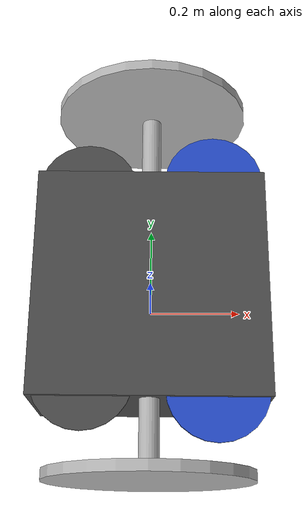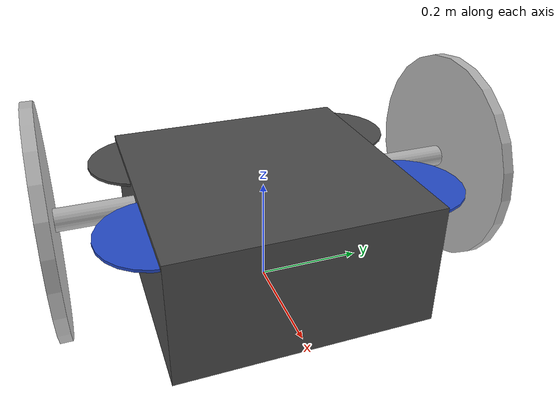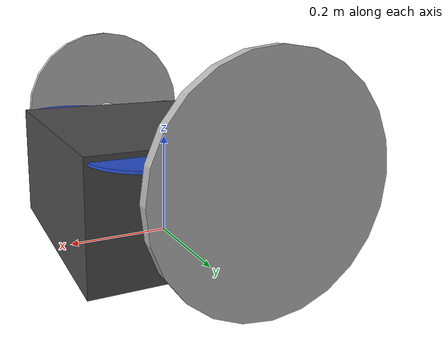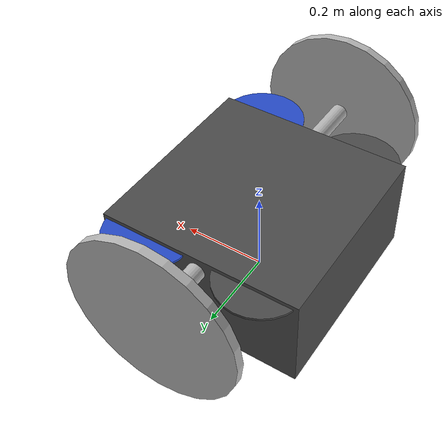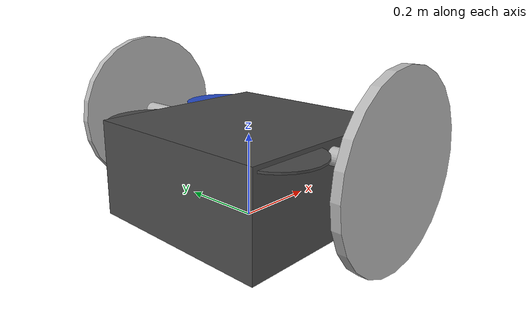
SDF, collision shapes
<?xml version="1.0" ?>
<sdf version="1.5">
  <model name='iris_wheel'>
    <include>
      <uri>model://iris_without_standoffs</uri>
      <pose>0 0 0.2 0 0 0</pose>
    </include>

    <include>
      <uri>model://wheel</uri>
    </include>

    <include>
      <uri>model://livox_laser</uri>
      <pose>0 0 0.22 0 0 0</pose>
    </include>

    <joint name="livox_laser_joint" type="fixed">
      <child>livox_laser::link</child>
      <parent>iris::base_link</parent>
      <axis>
        <xyz>0 0 1</xyz>
        <limit>
          <upper>0</upper>
          <lower>0</lower>
        </limit>
      </axis>
    </joint>

   <plugin name="arducopter_plugin" filename="libArduPilotPlugin.so">
      <fdm_addr>127.0.0.1</fdm_addr>
      <fdm_port_in>9002</fdm_port_in>
      <fdm_port_out>9003</fdm_port_out>
      <!--
          Require by APM :
          Only change model and gazebo from XYZ to XY-Z coordinates
      -->
      <modelXYZToAirplaneXForwardZDown>0 0 0 3.141593 0 0</modelXYZToAirplaneXForwardZDown>
      <gazeboXYZToNED>0 0 0 3.141593 0 0</gazeboXYZToNED>
      <imuName>iris_wheel::iris::iris/imu_link::imu_sensor</imuName>
      <connectionTimeoutMaxCount>5</connectionTimeoutMaxCount>
      <control channel="0">
      <!--
          incoming control command [0, 1]
          so offset it by 0 to get [0, 1]
          and divide max target by 1.
          offset = 0
          multiplier = 838 max rpm / 1 = 838
        -->
        <type>VELOCITY</type>
        <offset>0</offset>
        <p_gain>0.20</p_gain>
        <i_gain>0</i_gain>
        <d_gain>0</d_gain>
        <i_max>0</i_max>
        <i_min>0</i_min>
        <cmd_max>2.5</cmd_max>
        <cmd_min>-2.5</cmd_min>
        <jointName>iris::rotor_0_joint</jointName>
        <multiplier>1100</multiplier>
        <controlVelocitySlowdownSim>1</controlVelocitySlowdownSim>
      </control>
      <control channel="1">
        <type>VELOCITY</type>
        <offset>0</offset>
        <p_gain>0.20</p_gain>
        <i_gain>0</i_gain>
        <d_gain>0</d_gain>
        <i_max>0</i_max>
        <i_min>0</i_min>
        <cmd_max>2.5</cmd_max>
        <cmd_min>-2.5</cmd_min>
        <jointName>iris::rotor_1_joint</jointName>
        <multiplier>1100</multiplier>
        <controlVelocitySlowdownSim>1</controlVelocitySlowdownSim>
      </control>
      <control channel="2">
        <type>VELOCITY</type>
        <offset>0</offset>
        <p_gain>0.20</p_gain>
        <i_gain>0</i_gain>
        <d_gain>0</d_gain>
        <i_max>0</i_max>
        <i_min>0</i_min>
        <cmd_max>2.5</cmd_max>
        <cmd_min>-2.5</cmd_min>
        <jointName>iris::rotor_2_joint</jointName>
        <multiplier>-1100</multiplier>
        <controlVelocitySlowdownSim>1</controlVelocitySlowdownSim>
      </control>
      <control channel="3">
        <type>VELOCITY</type>
        <offset>0</offset>
        <p_gain>0.20</p_gain>
        <i_gain>0</i_gain>
        <d_gain>0</d_gain>
        <i_max>0</i_max>
        <i_min>0</i_min>
        <cmd_max>2.5</cmd_max>
        <cmd_min>-2.5</cmd_min>
        <jointName>iris::rotor_3_joint</jointName>
        <multiplier>-1100</multiplier>
        <controlVelocitySlowdownSim>1</controlVelocitySlowdownSim>
      </control>
    </plugin>
  </model>
</sdf>

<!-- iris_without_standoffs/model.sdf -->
<sdf version='1.6'>
  <model name='iris'>
    <pose>0 0 0.2 0 0 0</pose>
    <link name='base_link'>
      <velocity_decay>
        <linear>0.0</linear>
        <angular>0.0</angular>
      </velocity_decay>
      <inertial>
        <pose>0 0 0 0 0 0</pose>
        <mass>1.5</mass>
        <inertia>
          <ixx>0.008</ixx>
          <ixy>0</ixy>
          <ixz>0</ixz>
          <iyy>0.015</iyy>
          <iyz>0</iyz>
          <izz>0.017</izz>
        </inertia>
      </inertial>
      <collision name='base_link_collision'>
        <pose>0 0 -0.08 0 0 0</pose>
        <geometry>
          <box>
            <size>0.47 0.47 0.23</size>
          </box>
        </geometry>
        <surface>
          <contact>
            <ode>
              <max_vel>100.0</max_vel>
              <min_depth>0.001</min_depth>
            </ode>
          </contact>
          <friction>
            <ode>
              <mu>100000.0</mu>
              <mu2>100000.0</mu2>
            </ode>
          </friction>
        </surface>
      </collision>
      <visual name='base_link_visual'>
        <geometry>
          <mesh>
            <uri>model://iris_with_standoffs/meshes/iris.dae</uri>
          </mesh>
        </geometry>
        <material>
          <script>
            <name>Gazebo/DarkGrey</name>
          </script>
        </material>
      </visual>

      <visual name='front_left_leg_visual'>
        <pose>0.123 0.22 -0.11 0 0 0</pose>
        <geometry>
          <cylinder>
            <radius>0.005</radius>
            <length>0.17</length>
          </cylinder>
        </geometry>
        <material>
          <script>
            <name>Gazebo/FlatBlack</name>
            <uri>file://media/materials/scripts/gazebo.material</uri>
          </script>
        </material>
      </visual>
      <visual name='front_right_leg_visual'>
        <pose>0.123 -0.22 -0.11 0 0 0</pose>
        <geometry>
          <cylinder>
            <radius>0.005</radius>
            <length>0.17</length>
          </cylinder>
        </geometry>
        <material>
          <script>
            <name>Gazebo/FlatBlack</name>
            <uri>file://media/materials/scripts/gazebo.material</uri>
          </script>
        </material>
      </visual>
      <visual name='rear_left_leg_visual'>
        <pose>-0.140 0.21 -0.11 0 0 0</pose>
        <geometry>
          <cylinder>
            <radius>0.005</radius>
            <length>0.17</length>
          </cylinder>
        </geometry>
        <material>
          <script>
            <name>Gazebo/FlatBlack</name>
            <uri>file://media/materials/scripts/gazebo.material</uri>
          </script>
        </material>
      </visual>
      <visual name='rear_right_leg_visual'>
        <pose>-0.140 -0.21 -0.11 0 0 0</pose>
        <geometry>
          <cylinder>
            <radius>0.005</radius>
            <length>0.17</length>
          </cylinder>
        </geometry>
        <material>
          <script>
            <name>Gazebo/FlatBlack</name>
            <uri>file://media/materials/scripts/gazebo.material</uri>
          </script>
        </material>
      </visual>
    </link>
    <link name='iris/ground_truth/odometry_sensorgt_link'>
      <pose>0 0 0 0 -0 0</pose>
      <inertial>
        <pose>0 0 0 0 -0 0</pose>
        <mass>0.15</mass>
        <inertia>
          <ixx>0.0001</ixx>
          <ixy>0</ixy>
          <ixz>0</ixz>
          <iyy>0.0002</iyy>
          <iyz>0</iyz>
          <izz>0.0002</izz>
        </inertia>
      </inertial>
    </link>
    <joint name='iris/ground_truth/odometry_sensorgt_joint' type='revolute'>
      <child>iris/ground_truth/odometry_sensorgt_link</child>
      <parent>base_link</parent>
      <axis>
        <xyz>0 0 1</xyz>
        <limit>
          <lower>0</lower>
          <upper>0</upper>
          <effort>0</effort>
          <velocity>0</velocity>
        </limit>
        <dynamics>
          <damping>1.0</damping>
        </dynamics>
        <use_parent_model_frame>1</use_parent_model_frame>
      </axis>
      <physics>
        <ode>
          <implicit_spring_damper>1</implicit_spring_damper>
        </ode>
      </physics>
    </joint>
    <link name='iris/imu_link'>
      <inertial>
        <pose>0 0 0 0 0 0</pose>
        <mass>0.15</mass>
        <inertia>
          <ixx>0.00001</ixx>
          <ixy>0</ixy>
          <ixz>0</ixz>
          <iyy>0.00002</iyy>
          <iyz>0</iyz>
          <izz>0.00002</izz>
        </inertia>
      </inertial>
      <sensor name="imu_sensor" type="imu">
        <pose>0 0 0 3.141593 0 0</pose>
        <always_on>1</always_on>
        <update_rate>1000.0</update_rate>
      </sensor>
    </link>
    <joint name='iris/imu_joint' type='revolute'>
      <child>iris/imu_link</child>
      <parent>base_link</parent>
      <axis>
        <xyz>0 0 1</xyz>
        <limit>
          <lower>0</lower>
          <upper>0</upper>
          <effort>0</effort>
          <velocity>0</velocity>
        </limit>
        <dynamics>
          <damping>1.0</damping>
        </dynamics>
        <use_parent_model_frame>1</use_parent_model_frame>
      </axis>
      <physics>
        <ode>
          <implicit_spring_damper>1</implicit_spring_damper>
        </ode>
      </physics>
    </joint>
    <link name='rotor_0'>
      <pose>0.13 -0.22 0.023 0 -0 0</pose>
      <inertial>
        <pose>0 0 0 0 -0 0</pose>
        <mass>0.025</mass>
        <inertia>
          <ixx>9.75e-06</ixx>
          <ixy>0</ixy>
          <ixz>0</ixz>
          <iyy>0.000166704</iyy>
          <iyz>0</iyz>
          <izz>0.000167604</izz>
        </inertia>
      </inertial>
      <collision name='rotor_0_collision'>
        <pose>0 0 0 0 -0 0</pose>
        <geometry>
          <cylinder>
            <length>0.005</length>
            <radius>0.1</radius>
          </cylinder>
        </geometry>
        <surface>
          <contact>
            <ode/>
          </contact>
          <friction>
            <ode/>
          </friction>
        </surface>
      </collision>
      <visual name='rotor_0_visual'>
        <pose>0 0 0 0 -0 0</pose>
        <geometry>
          <mesh>
            <scale>1 1 1</scale>
            <uri>model://iris_with_standoffs/meshes/iris_prop_ccw.dae</uri>
          </mesh>
        </geometry>
        <material>
          <script>
            <name>Gazebo/Blue</name>
            <uri>__default__</uri>
          </script>
        </material>
      </visual>
      <gravity>1</gravity>
      <velocity_decay/>
      <self_collide>0</self_collide>
    </link>
    <joint name='rotor_0_joint' type='revolute'>
      <child>rotor_0</child>
      <parent>base_link</parent>
      <axis>
        <xyz>0 0 1</xyz>
        <limit>
          <lower>-1e+16</lower>
          <upper>1e+16</upper>
        </limit>
        <dynamics>
          <damping>0.004</damping>
        </dynamics>
        <use_parent_model_frame>1</use_parent_model_frame>
      </axis>
      <physics>
        <ode>
          <implicit_spring_damper>1</implicit_spring_damper>
        </ode>
      </physics>
    </joint>
    <link name='rotor_1'>
      <pose>-0.13 0.2 0.023 0 -0 0</pose>
      <inertial>
        <pose>0 0 0 0 -0 0</pose>
        <mass>0.025</mass>
        <inertia>
          <ixx>9.75e-06</ixx>
          <ixy>0</ixy>
          <ixz>0</ixz>
          <iyy>0.000166704</iyy>
          <iyz>0</iyz>
          <izz>0.000167604</izz>
        </inertia>
      </inertial>
      <collision name='rotor_1_collision'>
        <pose>0 0 0 0 -0 0</pose>
        <geometry>
          <cylinder>
            <length>0.005</length>
            <radius>0.1</radius>
          </cylinder>
        </geometry>
        <surface>
          <contact>
            <ode/>
          </contact>
          <friction>
            <ode/>
          </friction>
        </surface>
      </collision>
      <visual name='rotor_1_visual'>
        <pose>0 0 0 0 -0 0</pose>
        <geometry>
          <mesh>
            <scale>1 1 1</scale>
            <uri>model://iris_with_standoffs/meshes/iris_prop_ccw.dae</uri>
          </mesh>
        </geometry>
        <material>
          <script>
            <name>Gazebo/DarkGrey</name>
            <uri>__default__</uri>
          </script>
        </material>
      </visual>
      <gravity>1</gravity>
      <velocity_decay/>
      <self_collide>0</self_collide>
    </link>
    <joint name='rotor_1_joint' type='revolute'>
      <child>rotor_1</child>
      <parent>base_link</parent>
      <axis>
        <xyz>0 0 1</xyz>
        <limit>
          <lower>-1e+16</lower>
          <upper>1e+16</upper>
        </limit>
        <dynamics>
          <damping>0.004</damping>
        </dynamics>
        <use_parent_model_frame>1</use_parent_model_frame>
      </axis>
      <physics>
        <ode>
          <implicit_spring_damper>1</implicit_spring_damper>
        </ode>
      </physics>
    </joint>
    <link name='rotor_2'>
      <pose>0.13 0.22 0.023 0 -0 0</pose>
      <inertial>
        <pose>0 0 0 0 -0 0</pose>
        <mass>0.025</mass>
        <inertia>
          <ixx>9.75e-06</ixx>
          <ixy>0</ixy>
          <ixz>0</ixz>
          <iyy>0.000166704</iyy>
          <iyz>0</iyz>
          <izz>0.000167604</izz>
        </inertia>
      </inertial>
      <collision name='rotor_2_collision'>
        <pose>0 0 0 0 -0 0</pose>
        <geometry>
          <cylinder>
            <length>0.005</length>
            <radius>0.1</radius>
          </cylinder>
        </geometry>
        <surface>
          <contact>
            <ode/>
          </contact>
          <friction>
            <ode/>
          </friction>
        </surface>
      </collision>
      <visual name='rotor_2_visual'>
        <pose>0 0 0 0 -0 0</pose>
        <geometry>
          <mesh>
            <scale>1 1 1</scale>
            <uri>model://iris_with_standoffs/meshes/iris_prop_cw.dae</uri>
          </mesh>
        </geometry>
        <material>
          <script>
            <name>Gazebo/Blue</name>
            <uri>__default__</uri>
          </script>
        </material>
      </visual>
      <gravity>1</gravity>
      <velocity_decay/>
      <self_collide>0</self_collide>
    </link>
    <joint name='rotor_2_joint' type='revolute'>
      <child>rotor_2</child>
      <parent>base_link</parent>
      <axis>
        <xyz>0 0 1</xyz>
        <limit>
          <lower>-1e+16</lower>
          <upper>1e+16</upper>
        </limit>
        <dynamics>
          <damping>0.004</damping>
        </dynamics>
        <use_parent_model_frame>1</use_parent_model_frame>
      </axis>
      <physics>
        <ode>
          <implicit_spring_damper>1</implicit_spring_damper>
        </ode>
      </physics>
    </joint>
    <link name='rotor_3'>
      <pose>-0.13 -0.2 0.023 0 -0 0</pose>
      <inertial>
        <pose>0 0 0 0 -0 0</pose>
        <mass>0.025</mass>
        <inertia>
          <ixx>9.75e-06</ixx>
          <ixy>0</ixy>
          <ixz>0</ixz>
          <iyy>0.000166704</iyy>
          <iyz>0</iyz>
          <izz>0.000167604</izz>
        </inertia>
      </inertial>
      <collision name='rotor_3_collision'>
        <pose>0 0 0 0 -0 0</pose>
        <geometry>
          <cylinder>
            <length>0.005</length>
            <radius>0.1</radius>
          </cylinder>
        </geometry>
        <surface>
          <contact>
            <ode/>
          </contact>
          <friction>
            <ode/>
          </friction>
        </surface>
      </collision>
      <visual name='rotor_3_visual'>
        <pose>0 0 0 0 -0 0</pose>
        <geometry>
          <mesh>
            <scale>1 1 1</scale>
            <uri>model://iris_with_standoffs/meshes/iris_prop_cw.dae</uri>
          </mesh>
        </geometry>
        <material>
          <script>
            <name>Gazebo/DarkGrey</name>
            <uri>__default__</uri>
          </script>
        </material>
      </visual>
      <gravity>1</gravity>
      <velocity_decay/>
      <self_collide>0</self_collide>
    </link>
    <joint name='rotor_3_joint' type='revolute'>
      <child>rotor_3</child>
      <parent>base_link</parent>
      <axis>
        <xyz>0 0 1</xyz>
        <limit>
          <lower>-1e+16</lower>
          <upper>1e+16</upper>
        </limit>
        <dynamics>
          <damping>0.004</damping>
        </dynamics>
        <use_parent_model_frame>1</use_parent_model_frame>
      </axis>
      <physics>
        <ode>
          <implicit_spring_damper>1</implicit_spring_damper>
        </ode>
      </physics>
    </joint>
    <static>0</static>

   <!-- plugins -->
    <plugin name="rotor_0_blade_1" filename="libLiftDragPlugin.so">
      <a0>0.3</a0>
      <alpha_stall>1.4</alpha_stall>
      <cla>4.2500</cla>
      <cda>0.10</cda>
      <cma>0.00</cma>
      <cla_stall>-0.025</cla_stall>
      <cda_stall>0.0</cda_stall>
      <cma_stall>0.0</cma_stall>
      <area>0.002</area>
      <air_density>1.2041</air_density>
      <cp>0.084 0 0</cp>
      <forward>0 1 0</forward>
      <upward>0 0 1</upward>
      <link_name>iris::rotor_0</link_name>
    </plugin>
    <plugin name="rotor_0_blade_2" filename="libLiftDragPlugin.so">
      <a0>0.3</a0>
      <alpha_stall>1.4</alpha_stall>
      <cla>4.2500</cla>
      <cda>0.10</cda>
      <cma>0.00</cma>
      <cla_stall>-0.025</cla_stall>
      <cda_stall>0.0</cda_stall>
      <cma_stall>0.0</cma_stall>
      <area>0.002</area>
      <air_density>1.2041</air_density>
      <cp>-0.084 0 0</cp>
      <forward>0 -1 0</forward>
      <upward>0 0 1</upward>
      <link_name>iris::rotor_0</link_name>
    </plugin>

    <plugin name="rotor_1_blade_1" filename="libLiftDragPlugin.so">
      <a0>0.3</a0>
      <alpha_stall>1.4</alpha_stall>
      <cla>4.2500</cla>
      <cda>0.10</cda>
      <cma>0.00</cma>
      <cla_stall>-0.025</cla_stall>
      <cda_stall>0.0</cda_stall>
      <cma_stall>0.0</cma_stall>
      <area>0.002</area>
      <air_density>1.2041</air_density>
      <cp>0.084 0 0</cp>
      <forward>0 1 0</forward>
      <upward>0 0 1</upward>
      <link_name>iris::rotor_1</link_name>
    </plugin>
    <plugin name="rotor_1_blade_2" filename="libLiftDragPlugin.so">
      <a0>0.3</a0>
      <alpha_stall>1.4</alpha_stall>
      <cla>4.2500</cla>
      <cda>0.10</cda>
      <cma>0.00</cma>
      <cla_stall>-0.025</cla_stall>
      <cda_stall>0.0</cda_stall>
      <cma_stall>0.0</cma_stall>
      <area>0.002</area>
      <air_density>1.2041</air_density>
      <cp>-0.084 0 0</cp>
      <forward>0 -1 0</forward>
      <upward>0 0 1</upward>
      <link_name>iris::rotor_1</link_name>
    </plugin>

    <plugin name="rotor_2_blade_1" filename="libLiftDragPlugin.so">
      <a0>0.3</a0>
      <alpha_stall>1.4</alpha_stall>
      <cla>4.2500</cla>
      <cda>0.10</cda>
      <cma>0.00</cma>
      <cla_stall>-0.025</cla_stall>
      <cda_stall>0.0</cda_stall>
      <cma_stall>0.0</cma_stall>
      <area>0.002</area>
      <air_density>1.2041</air_density>
      <cp>0.084 0 0</cp>
      <forward>0 -1 0</forward>
      <upward>0 0 1</upward>
      <link_name>iris::rotor_2</link_name>
    </plugin>
    <plugin name="rotor_2_blade_2" filename="libLiftDragPlugin.so">
      <a0>0.3</a0>
      <alpha_stall>1.4</alpha_stall>
      <cla>4.2500</cla>
      <cda>0.10</cda>
      <cma>0.00</cma>
      <cla_stall>-0.025</cla_stall>
      <cda_stall>0.0</cda_stall>
      <cma_stall>0.0</cma_stall>
      <area>0.002</area>
      <air_density>1.2041</air_density>
      <cp>-0.084 0 0</cp>
      <forward>0 1 0</forward>
      <upward>0 0 1</upward>
      <link_name>iris::rotor_2</link_name>
    </plugin>

    <plugin name="rotor_3_blade_1" filename="libLiftDragPlugin.so">
      <a0>0.3</a0>
      <alpha_stall>1.4</alpha_stall>
      <cla>4.2500</cla>
      <cda>0.10</cda>
      <cma>0.00</cma>
      <cla_stall>-0.025</cla_stall>
      <cda_stall>0.0</cda_stall>
      <cma_stall>0.0</cma_stall>
      <area>0.002</area>
      <air_density>1.2041</air_density>
      <cp>0.084 0 0</cp>
      <forward>0 -1 0</forward>
      <upward>0 0 1</upward>
      <link_name>iris::rotor_3</link_name>
    </plugin>
    <plugin name="rotor_3_blade_2" filename="libLiftDragPlugin.so">
      <a0>0.3</a0>
      <alpha_stall>1.4</alpha_stall>
      <cla>4.2500</cla>
      <cda>0.10</cda>
      <cma>0.00</cma>
      <cla_stall>-0.025</cla_stall>
      <cda_stall>0.0</cda_stall>
      <cma_stall>0.0</cma_stall>
      <area>0.002</area>
      <air_density>1.2041</air_density>
      <cp>-0.084 0 0</cp>
      <forward>0 1 0</forward>
      <upward>0 0 1</upward>
      <link_name>iris::rotor_3</link_name>
    </plugin>
  </model>
</sdf>

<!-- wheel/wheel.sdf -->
<sdf version="1.5">
  <model name='wheel'>
    <link name="left_link">
      <pose>0 0.38 0.2 0 1.5707 1.5707</pose>
      <inertial>
        <pose>0 0 0 0 0 0</pose>
        <mass>0.05</mass>
        <inertia>
          <ixx>5.0167e-4</ixx>
          <ixy>0</ixy>
          <ixz>0</ixz>
          <iyy>1e-3</iyy>
          <iyz>0</iyz>
          <izz>5.0167e-4</izz>
        </inertia>
      </inertial>
      <collision name="collision">
        <geometry>
          <cylinder>
            <radius>.2</radius>
            <length>.02</length>
          </cylinder>
        </geometry>
        <surface>
          <friction>
            <ode>
              <mu>1.0</mu>
              <mu2>50.0</mu2>
              <fdir1>0 0 1</fdir1>
              <slip1>0.0</slip1>
              <slip2>0.0</slip2>
            </ode>
          </friction>
          <contact>
            <ode>
              <min_depth>0.005</min_depth>
              <kp>1e8</kp>
            </ode>
          </contact>
        </surface>
      </collision>

      <visual name="visual">
        <geometry>
          <cylinder>
            <radius>.2</radius>
            <length>.02</length>
          </cylinder>
        </geometry>
      </visual>
    </link>

     <link name="left_stick">
      <pose>0 0.2 0.2 0 1.5707 1.5707</pose>
      <inertial>
        <pose>0 0 0 0 0 0</pose>
        <mass>1e-6</mass>
        <inertia>
          <ixx>1.031e-8</ixx>
          <ixy>0</ixy>
          <ixz>0</ixz>
          <iyy>2e-10</iyy>
          <iyz>0</iyz>
          <izz>1.031e-8</izz>
        </inertia>
      </inertial>
      <collision name="collision">
        <geometry>
          <cylinder>
            <radius>.02</radius>
            <length>0.35</length>
          </cylinder>
        </geometry>
      </collision>

      <visual name="visual">
        <geometry>
          <cylinder>
            <radius>.02</radius>
            <length>0.35</length>
          </cylinder>
        </geometry>
      </visual>
    </link>

    <link name="right_link">
      <pose>0 -0.38 0.2 0 1.5707 1.5707</pose>
      <inertial>
        <pose>0 0 0 0 0 0</pose>
        <mass>0.05</mass>
        <inertia>
          <ixx>5.0167e-4</ixx>
          <ixy>0</ixy>
          <ixz>0</ixz>
          <iyy>1e-3</iyy>
          <iyz>0</iyz>
          <izz>5.0167e-4</izz>
        </inertia>
      </inertial>
      <collision name="collision">
        <geometry>
          <cylinder>
            <radius>.2</radius>
            <length>.02</length>
          </cylinder>
        </geometry>
        <surface>
          <friction>
            <ode>
              <mu>1.0</mu>
              <mu2>50.0</mu2>
              <fdir1>0 0 1</fdir1>
              <slip1>0.0</slip1>
              <slip2>0.0</slip2>
            </ode>
          </friction>
          <contact>
            <ode>
              <min_depth>0.005</min_depth>
              <kp>1e8</kp>
            </ode>
          </contact>
        </surface>
      </collision>

      <visual name="visual">
        <geometry>
          <cylinder>
            <radius>.2</radius>
            <length>.02</length>
          </cylinder>
        </geometry>
      </visual>
    </link>
    <link name="right_stick">
      <pose>0 -0.2 0.2 0 1.5707 1.5707</pose>
      <inertial>
        <pose>0 0 0 0 0 0</pose>
        <mass>1e-6</mass>
        <inertia>
          <ixx>1.031e-8</ixx>
          <ixy>0</ixy>
          <ixz>0</ixz>
          <iyy>2e-10</iyy>
          <iyz>0</iyz>
          <izz>1.031e-8</izz>
        </inertia>
      </inertial>
      <collision name="collision">
        <geometry>
          <cylinder>
            <radius>.02</radius>
            <length>0.35</length>
          </cylinder>
        </geometry>
      </collision>

      <visual name="visual">
        <geometry>
          <cylinder>
            <radius>.02</radius>
            <length>0.35</length>
          </cylinder>
        </geometry>
      </visual>
    </link>

    <joint name="left_stick_joint" type="fixed">
      <child>left_link</child>
      <parent>iris::base_link</parent>
      <axis>
        <xyz>0 1 0</xyz>
          <upper>0</upper>
          <lower>0</lower>
          <effort>0</effort>
          <velocity>0</velocity>
      </axis>
    </joint>

  <joint name="left_wheel_joint" type="revolute">
      <child>left_stick</child>
      <parent>left_link</parent>
      <axis>
        <xyz>0 1 0</xyz>
        <limit>
          <upper>-1e+16</upper>
          <lower>1e+16</lower>
        </limit>
        <dynamics>
          <spring_reference>0</spring_reference>
          <spring_stiffness>0</spring_stiffness>
        </dynamics>
        <use_parent_model_frame>true</use_parent_model_frame>
      </axis>
    </joint>

   <joint name="right_stick_joint" type="fixed">
      <child>right_link</child>
      <parent>iris::base_link</parent>
      <axis>
        <xyz>0 1 0</xyz>
        <limit>
          <upper>0</upper>
          <lower>0</lower>
          <effort>0</effort>
          <velocity>0</velocity>
        </limit>
      </axis>
    </joint>

    <joint name="right_wheel_joint" type="revolute">
      <child>right_stick</child>
      <parent>right_link</parent>
      <axis>
        <xyz>0 1 0</xyz>
        <limit>
          <upper>-1e+16</upper>
          <lower>1e+16</lower>
        </limit>
        <dynamics>
          <spring_reference>0</spring_reference>
          <spring_stiffness>0</spring_stiffness>
        </dynamics>
        <use_parent_model_frame>true</use_parent_model_frame>
      </axis>
    </joint>

    <joint name="left_zc_joint" type="revolute">
      <child>left_link</child>
      <parent>left_stick</parent>
      <axis>
        <xyz>0 1 0</xyz>
        <limit>
          <upper>-1</upper>
          <lower>1</lower>
        </limit>
        <dynamics>
          <spring_reference>0</spring_reference>
          <spring_stiffness>0</spring_stiffness>
        </dynamics>
        <use_parent_model_frame>true</use_parent_model_frame>
      </axis>
    </joint>
    <joint name="right_zc_joint" type="revolute">
      <child>right_link</child>
      <parent>right_stick</parent>
      <axis>
        <xyz>0 1 0</xyz>
        <limit>
          <upper>-1</upper>
          <lower>1</lower>
        </limit>
        <dynamics>
          <spring_reference>0</spring_reference>
          <spring_stiffness>0</spring_stiffness>
        </dynamics>
        <use_parent_model_frame>true</use_parent_model_frame>
      </axis>
    </joint>

  </model>
</sdf>

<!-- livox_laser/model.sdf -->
<sdf version="1.4">
  <model name="livox_laser">
    <link name="link">
      <pose>0 0 0 0 0 0</pose>
      <inertial>
        <pose>0 0 0 0 0 0</pose>
        <mass>0.01</mass>
        <inertia>
          <ixx>2.1733e-6</ixx>
          <ixy>0</ixy>
          <ixz>0</ixz>
          <iyy>2.1733e-6</iyy>
          <iyz>0</iyz>
          <izz>1.8e-7</izz>
        </inertia>
      </inertial>
      <visual name="visual">
        <geometry>
          <mesh>
            <uri>model://livox_laser/mesh/mid360.stl</uri>
            <!-- From mm to m -->
            <scale>0.001 0.001 0.001</scale>
          </mesh>
        </geometry>
        <material>
          <script>
            <name>Gazebo/Blue</name>
          </script>
        </material>
      </visual>
      <sensor name='laser_livox' type='ray'>
        <visualize>1</visualize>
        <update_rate>100</update_rate>
        <plugin name='gazebo_ros_laser_controller' filename='liblivox_laser_simulation.so'>
          <ray>
            <scan>
              <horizontal>
                <samples>100</samples>
                <resolution>1</resolution>
                <min_angle>0</min_angle>
                <max_angle>6.28318</max_angle>
              </horizontal>
              <vertical>
                <samples>360</samples>
                <resolution>1</resolution>
                <min_angle>-0.12601266555555554</min_angle>
                <max_angle>0.9637699988888888</max_angle>
              </vertical>
            </scan>
            <range>
              <min>0.1</min>
              <max>200.0</max>
              <resolution>0.002</resolution>
            </range>
            <noise>
              <type>gaussian</type>
              <mean>0.0</mean>
              <stddev>0.01</stddev>
            </noise>
          </ray>
          <visualize>1</visualize>
          <samples>24000</samples>
          <downsample>1</downsample>
          <csv_file_name>
            model://livox_laser/scan_mode/mid360.csv
          </csv_file_name>
          <ros_topic>scan</ros_topic>
        </plugin>
        <pose>0 0 0.5557 0 -0 0</pose>
      </sensor>
    </link>
  </model>
</sdf>
